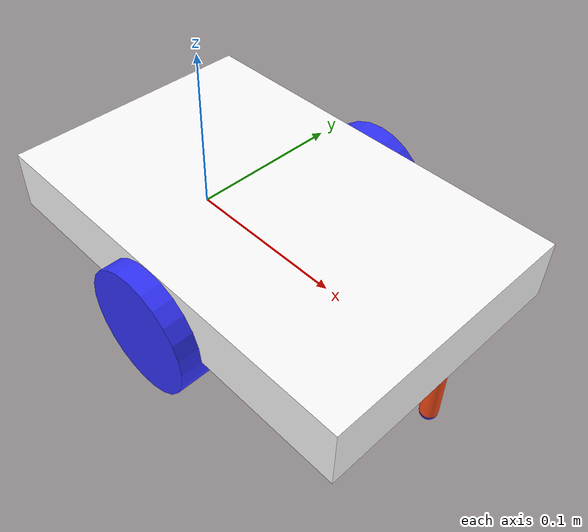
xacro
<?xml version="1.0"?>
<robot xmlns:xacro="http://www.ros.org/wiki/xacro">

    <xacro:include filename="inertial_macros.xacro" />

    <!-- Define parameters for chassis dimensions and position -->
    <xacro:property name="chassis_length" value="0.25"/>
    <xacro:property name="chassis_width" value="0.16"/>
    <xacro:property name="chassis_height" value="0.037"/>
    <xacro:property name="chassis_x_offset" value="0.055"/>

    <!-- Parametrize wheel dimensions -->
    <xacro:property name="wheel_radius" value="0.037"/>
    <xacro:property name="wheel_length" value="0.025"/>

    <!-- Parametrize caster wheel shaft and caster wheel radii -->
    <xacro:property name="caster_wheel_shaft_radius" value="0.005"/>
    <xacro:property name="caster_wheel_radius" value="0.005"/>

    <material name="white">
        <color rgba="1 1 1 1"/>
    </material>

    <material name="orange">
        <color rgba="1 0.3 0.1 1"/>
    </material>

    <material name="blue">
        <color rgba="0.2 0.2 1 1"/>
    </material>

    <material name="black">
        <color rgba="0 0 0 1"/>
    </material>

    <link name="base_link">
    </link>

    <joint name="chassis_joint" type="fixed">
        <parent link="base_link"/>
        <child link="chassis"/>
        <origin xyz="0 0 0"/>
    </joint>

    <link name="chassis">
        <visual>
            <origin xyz="${chassis_x_offset} 0 ${chassis_height / 2}" rpy="0 0 0"/>
            <geometry>
                <box size="${chassis_length} ${chassis_width} ${chassis_height}"/>
            </geometry>
            <material name="white"/>
        </visual>
        <collision>
            <origin xyz="${chassis_x_offset} 0 ${chassis_height / 2}" rpy="0 0 0"/>
            <geometry>
                <box size="${chassis_length} ${chassis_width} ${chassis_height}"/>
            </geometry>
        </collision>
        <xacro:inertial_box mass="0.5" x="${chassis_length}" y="${chassis_width}" z="${chassis_height}">
            <origin xyz="${chassis_x_offset} 0 ${chassis_height}" rpy="0 0 0"/>
        </xacro:inertial_box>
    </link>

    <gazebo reference="chassis">
        <material>Gazebo/White</material>
    </gazebo>

    <!-- LEFT WHEEL -->
    <joint name="left_wheel_joint" type="continuous">
        <parent link="base_link"/>
        <child link="left_wheel"/>
        <origin xyz="${chassis_x_offset} 0.08 0" rpy="-${pi/2} 0 0"/>
        <axis xyz="0 0 1"/>
    </joint>

    <link name="left_wheel">
        <visual>
            <geometry>
                <cylinder length="${wheel_length}" radius="${wheel_radius}" />
            </geometry>
            <material name="blue"/>
        </visual>
        <collision>
            <geometry>
                <cylinder length="${wheel_length}" radius="${wheel_radius}" />
            </geometry>
        </collision>
        <xacro:inertial_cylinder mass="0.1" length="${wheel_length}" radius="${wheel_radius}">
            <origin xyz="0 0 0" rpy="0 0 0"/>
        </xacro:inertial_cylinder>
    </link>
    <gazebo reference="left_wheel">
        <material>Gazebo/Yellow</material>
    </gazebo>

    <!-- RIGHT WHEEL -->
    <joint name="right_wheel_joint" type="continuous">
        <parent link="base_link"/>
        <child link="right_wheel"/>
        <origin xyz="${chassis_x_offset} -0.08 0" rpy="${pi/2} 0 0"/>
        <axis xyz="0 0 -1"/>
    </joint>

    <link name="right_wheel">
        <visual>
            <geometry>
                <cylinder length="${wheel_length}" radius="${wheel_radius}" />
            </geometry>
            <material name="blue"/>
        </visual>
        <collision>
            <geometry>
                <cylinder length="${wheel_length}" radius="${wheel_radius}" />
            </geometry>
        </collision>
        <xacro:inertial_cylinder mass="0.1" length="${wheel_length}" radius="${wheel_radius}">
            <origin xyz="0 0 0" rpy="0 0 0"/>
        </xacro:inertial_cylinder>
    </link>
    <gazebo reference="right_wheel">
        <material>Gazebo/Yellow</material>
    </gazebo>

    <!-- Caster wheel shaft -->
    <joint name="caster_wheel_shaft_joint" type="fixed">
        <parent link="chassis"/>
        <child link="caster_wheel_shaft"/>
        <!-- Reduce x by the caster_wheel_shaft_radius to align the shaft extremity with the chassis edge -->
        <origin xyz="${chassis_length / 2 + chassis_x_offset - caster_wheel_shaft_radius} 0 -0.016" rpy="0 0 0"/>
        <axis xyz="0 0 -1"/>
    </joint>

    <link name="caster_wheel_shaft">
        <visual>
            <geometry>
                <cylinder length="0.032" radius="${caster_wheel_shaft_radius}" />
            </geometry>
            <material name="orange"/>
        </visual>
        <collision>
            <geometry>
                <cylinder length="0.032" radius="${caster_wheel_shaft_radius}" />
            </geometry>
        </collision>
    </link>

    <!-- CASTER WHEEL -->
    <joint name="caster_wheel_joint" type="fixed">
        <parent link="caster_wheel_shaft"/>
        <child link="caster_wheel"/>
        <origin xyz="0 0 -0.016" rpy="0 0 0"/>
    </joint>

    <link name="caster_wheel">
        <visual>
            <geometry>
                <sphere radius="${caster_wheel_radius}" />
            </geometry>
            <material name="blue"/>
        </visual>
        <collision>
            <geometry>
                <sphere radius="${caster_wheel_radius}" />
            </geometry>
        </collision>
    </link>
    <gazebo reference="caster_wheel">
        <material>Gazebo/Black</material>
        <mu1 value="0.001"/>
        <mu2 value="0.001"/>
    </gazebo>

</robot>
